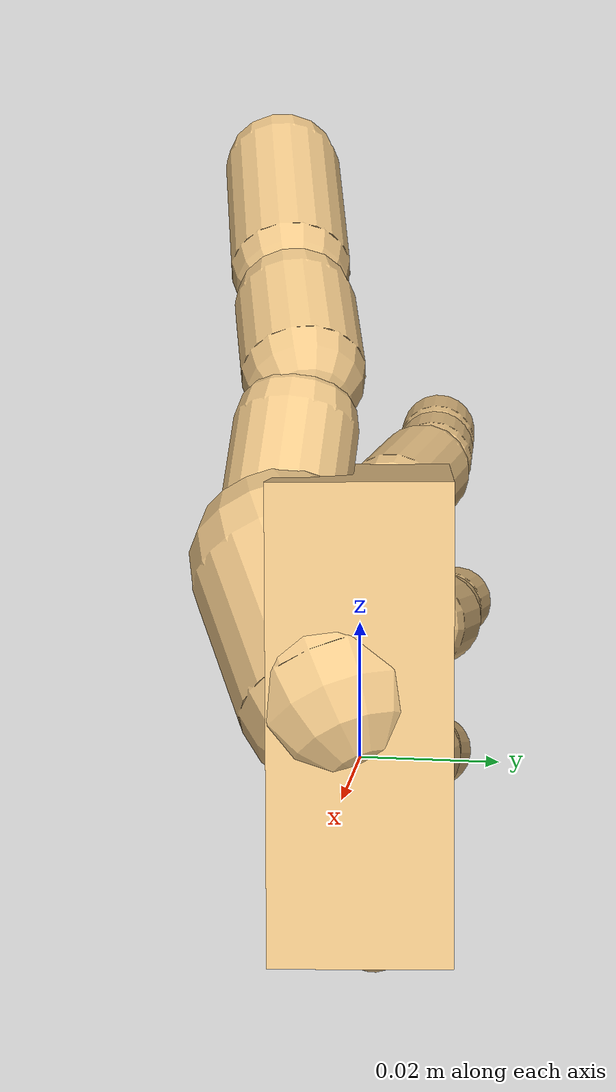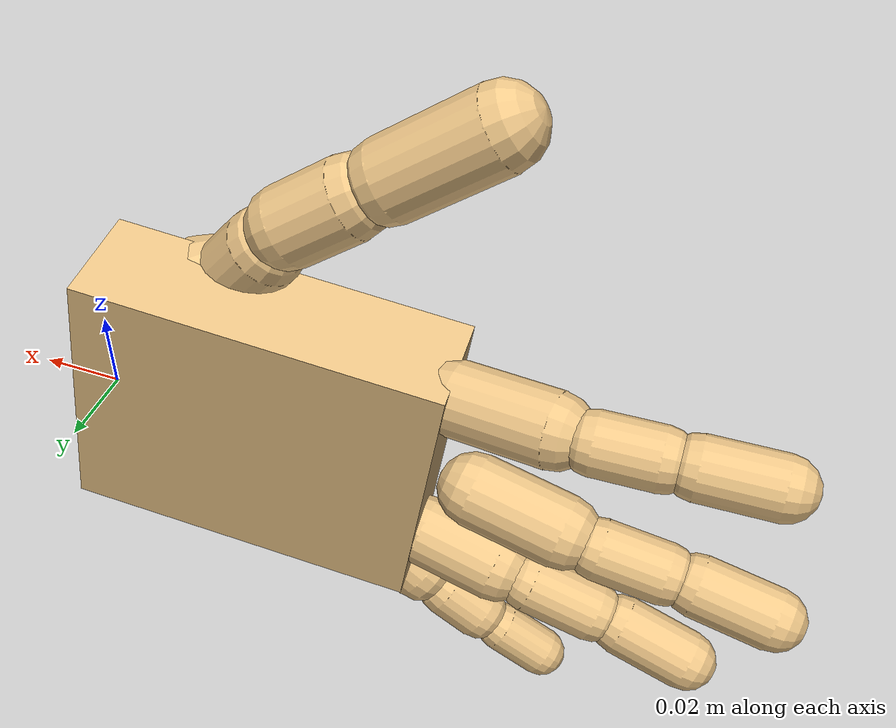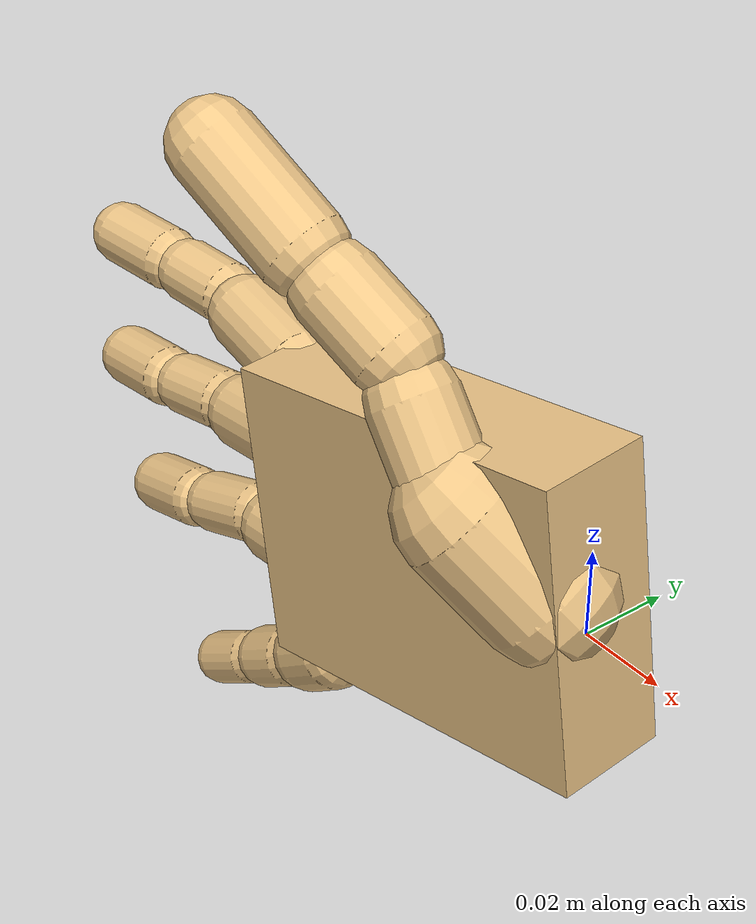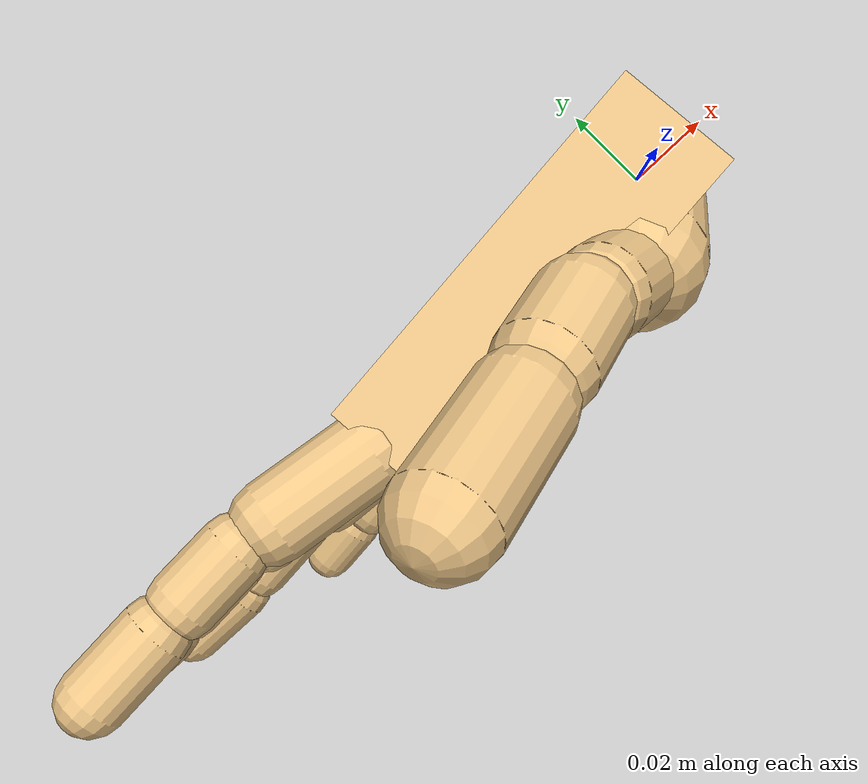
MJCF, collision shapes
<mujoco model="rhand_mano">
    <compiler angle="radian" meshdir="./meshes/" />
    <size njmax="500" nconmax="100" />
    <asset>
         <mesh name="right_wrist" file="right_wrist.obj" />
        <mesh name="right_index1" file="right_index1.obj" />
        <mesh name="right_index2" file="right_index2.obj" />
        <mesh name="right_index3" file="right_index3.obj" />
        <mesh name="right_middle1" file="right_middle1.obj" />
        <mesh name="right_middle2" file="right_middle2.obj" />
        <mesh name="right_middle3" file="right_middle3.obj" />
        <mesh name="right_pinky1" file="right_pinky1.obj" />
        <mesh name="right_pinky2" file="right_pinky2.obj" />
        <mesh name="right_pinky3" file="right_pinky3.obj" />
        <mesh name="right_ring1" file="right_ring1.obj" />
        <mesh name="right_ring2" file="right_ring2.obj" />
        <mesh name="right_ring3" file="right_ring3.obj" />
        <mesh name="right_thumb1" file="right_thumb1.obj" />
        <mesh name="right_thumb2" file="right_thumb2.obj" />
        <mesh name="right_thumb3" file="right_thumb3.obj" />
    </asset>
    <worldbody>
        <body name="right_wrist" pos="0 0 0">

                                <geom pos="-0.0956699 -0.00638343 -0.0061863" type="mesh" contype="0" conaffinity="0" group="1" rgba="0.917969 0.765 0.5234 1" mesh="right_wrist" />
                                <geom size="0.0439 0.0135 0.035" pos="-0.0392211 -0.00378517 -0.000630835" quat="0.996311 0.00681974 -0.0706646 0.0482078" type="box" rgba="0.917969 0.765 0.5234 1" />
                                <geom size="0.015 0.0117845" pos="-0.0144538 -0.0093134 0.0154877" quat="0.913582 0.220263 -0.341835 0" type="capsule" rgba="0.917969 0.765 0.5234 1" />
                                <body name="right_index1" pos="-0.0880973 -0.00520036 0.020686">
                                    <inertial pos="-0.0184105 0.00337297 0.00148585" quat="0.00227126 0.676555 -0.0419441 0.735193" mass="0.00885801" diaginertia="8.33438e-07 8.00909e-07 4.40063e-07" />
                                    <joint name="right_index1_x" pos="0 0 0" axis="1 0 0" limited="true" range="-0.14 0.46" stiffness="10" damping="10" frictionloss="0.0001" />
                                    <body name="right_index1_y" pos="0 0 0">
                                        <inertial pos="0 0 0" mass="0.01" diaginertia="0.01 0.01 0.01" />
                                        <joint name="right_index1_y" pos="0 0 0" axis="0 1 0" limited="true" range="-0.61 0.32" stiffness="10" damping="10" frictionloss="0.0001" />
                                        <body name="right_index1_z" pos="0 0 0">
                                            <inertial pos="0 0 0" mass="0.01" diaginertia="0.01 0.01 0.01" />
                                            <joint name="right_index1_z" pos="0 0 0" axis="0 0 1" limited="true" range="-0.38 1.25" stiffness="10" damping="10" frictionloss="0.0001" />
                                            <geom pos="-0.00757268 -0.00118307 -0.0268723" type="mesh" contype="0" conaffinity="0" group="1" rgba="0.917969 0.765 0.5234 1" mesh="right_index1" />
                                            <geom size="0.009 0.0119992" pos="-0.011883 0.00145792 0.000806192" quat="0.730475 -0.0831659 -0.677857 0" type="capsule" rgba="0.917969 0.765 0.5234 1" />
                                            <body name="right_index2" pos="-0.0326789 0.00400936 0.00221707">
                                                <inertial pos="-0.0112131 -0.000167142 2.32336e-05" quat="0.436117 0.481284 0.415986 0.636493" mass="0.00429965" diaginertia="2.26068e-07 2.05281e-07 1.5109e-07" />
                                                <joint name="right_index2_x" pos="0 0 0" axis="1 0 0" limited="true" range="-0.43 0.58" stiffness="10" damping="10" frictionloss="0.0001" />
                                                <body name="right_index2_y" pos="0 0 0">
                                                    <inertial pos="0 0 0" mass="0.01" diaginertia="0.01 0.01 0.01" />
                                                    <joint name="right_index2_y" pos="0 0 0" axis="0 1 0" limited="true" range="-0.26 0.21" stiffness="10" damping="10" frictionloss="0.0001" />
                                                    <body name="right_index2_z" pos="0 0 0">
                                                        <inertial pos="0 0 0" mass="0.01" diaginertia="0.01 0.01 0.01" />
                                                        <joint name="right_index2_z" pos="0 0 0" axis="0 0 1" limited="true" range="-0.14 1.3" stiffness="10" damping="10" frictionloss="0.0001" />
                                                        <geom pos="0.0251062 -0.00519243 -0.0290894" type="mesh" contype="0" conaffinity="0" group="1" rgba="0.917969 0.765 0.5234 1" mesh="right_index2" />
                                                        <geom size="0.0075 0.00734711" pos="-0.00733443 -0.000429826 -3.77775e-05" quat="0.705287 0.0414745 -0.707708 0" type="capsule" rgba="0.917969 0.765 0.5234 1" />
                                                        <body name="right_index3" pos="-0.0221559 -0.00129842 -0.000114119">
                                                            <inertial pos="-0.0111328 -0.000501862 -0.000143096" quat="0.598112 0.404056 0.535204 0.438814" mass="0.00309571" diaginertia="1.58586e-07 1.42543e-07 7.39047e-08" />
                                                            <joint name="right_index3_x" pos="0 0 0" axis="1 0 0" limited="true" range="-0.39 0.43" stiffness="10" damping="10" frictionloss="0.0001" />
                                                            <body name="right_index3_y" pos="0 0 0">
                                                                <inertial pos="0 0 0" mass="0.01" diaginertia="0.01 0.01 0.01" />
                                                                <joint name="right_index3_y" pos="0 0 0" axis="0 1 0" limited="true" range="-0.17 0.35" stiffness="10" damping="10" frictionloss="0.0001" />
                                                                <body name="right_index3_z" pos="0 0 0">
                                                                    <inertial pos="-0.0127411 0.000592058 -0.000250692" quat="0.0165763 0.699936 -0.0162537 0.713828" mass="0.02" diaginertia="0.0200033 0.0200033 0.02" />
                                                                    <joint name="right_index3_z" pos="0 0 0" axis="0 0 1" limited="true" range="-0.25 1.15" stiffness="10" damping="10" frictionloss="0.0001" />
                                                                    <geom pos="0.0472621 -0.003894 -0.0289752" type="mesh" contype="0" conaffinity="0" group="1" rgba="0.917969 0.765 0.5234 1" mesh="right_index3" />
                                                                    <geom size="0.0075 0.00902586" pos="-0.00900129 -0.000641441 -0.000177108" quat="0.700135 0.0507524 -0.712205 0" type="capsule" rgba="0.917969 0.765 0.5234 1" />
                                                                </body>
                                                            </body>
                                                        </body>
                                                    </body>
                                                </body>
                                            </body>
                                        </body>
                                    </body>
                                </body>
                                <body name="right_middle1" pos="-0.0946605 -0.00147896 -0.00335754">
                                    <inertial pos="-0.0140409 0.00236965 -0.00297553" quat="0.61092 0.387719 0.482166 0.49393" mass="0.0104123" diaginertia="1.20313e-06 1.15795e-06 5.34769e-07" />
                                    <joint name="right_middle1_x" pos="0 0 0" axis="1 0 0" limited="true" range="-0.5 0.42" stiffness="10" damping="10" frictionloss="0.0001" />
                                    <body name="right_middle1_y" pos="0 0 0">
                                        <inertial pos="0 0 0" mass="0.01" diaginertia="0.01 0.01 0.01" />
                                        <joint name="right_middle1_y" pos="0 0 0" axis="0 1 0" limited="true" range="-0.61 0.21" stiffness="10" damping="10" frictionloss="0.0001" />
                                        <body name="right_middle1_z" pos="0 0 0">
                                            <inertial pos="0 0 0" mass="0.01" diaginertia="0.01 0.01 0.01" />
                                            <joint name="right_middle1_z" pos="0 0 0" axis="0 0 1" limited="true" range="-0.49 1.44" stiffness="10" damping="10" frictionloss="0.0001" />
                                            <geom pos="-0.00100949 -0.00490447 -0.00282876" type="mesh" contype="0" conaffinity="0" group="1" rgba="0.917969 0.765 0.5234 1" mesh="right_middle1" />
                                            <geom size="0.009 0.0113676" pos="-0.0111697 0.000666731 -0.00200396" quat="0.64176 -0.0456961 -0.765543 0" type="capsule" rgba="0.917969 0.765 0.5234 1" />
                                            <body name="right_middle2" pos="-0.0311827 0.00186133 -0.00559451">
                                                <inertial pos="-0.0130836 -0.000209653 -0.00221531" quat="0.52861 0.334981 0.537432 0.565267" mass="0.00413492" diaginertia="2.07183e-07 1.92604e-07 1.43804e-07" />
                                                <joint name="right_middle2_x" pos="0 0 0" axis="1 0 0" limited="true" range="-0.47 0.02" stiffness="10" damping="10" frictionloss="0.0001" />
                                                <body name="right_middle2_y" pos="0 0 0">
                                                    <inertial pos="0 0 0" mass="0.01" diaginertia="0.01 0.01 0.01" />
                                                    <joint name="right_middle2_y" pos="0 0 0" axis="0 1 0" limited="true" range="-0.29 0.05" stiffness="10" damping="10" frictionloss="0.0001" />
                                                    <body name="right_middle2_z" pos="0 0 0">
                                                        <inertial pos="0 0 0" mass="0.01" diaginertia="0.01 0.01 0.01" />
                                                        <joint name="right_middle2_z" pos="0 0 0" axis="0 0 1" limited="true" range="-0.45 1.33" stiffness="10" damping="10" frictionloss="0.0001" />
                                                        <geom pos="0.0301732 -0.00676579 0.00276574" type="mesh" contype="0" conaffinity="0" group="1" rgba="0.917969 0.765 0.5234 1" mesh="right_middle2" />
                                                        <geom size="0.0075 0.00788775" pos="-0.00776207 -0.000424321 -0.00133674" quat="0.64441 0.0417397 -0.76354 0" type="capsule" rgba="0.917969 0.765 0.5234 1" />
                                                        <body name="right_middle3" pos="-0.0229046 -0.0012521 -0.00394451">
                                                            <inertial pos="-0.013412 -0.00013217 -0.00208169" quat="0.651508 0.408066 0.461417 0.442847" mass="0.00301659" diaginertia="1.38969e-07 1.27402e-07 7.54781e-08" />
                                                            <joint name="right_middle3_x" pos="0 0 0" axis="1 0 0" limited="true" range="-0.38 0" stiffness="10" damping="10" frictionloss="0.0001" />
                                                            <body name="right_middle3_y" pos="0 0 0">
                                                                <inertial pos="0 0 0" mass="0.01" diaginertia="0.01 0.01 0.01" />
                                                                <joint name="right_middle3_y" pos="0 0 0" axis="0 1 0" limited="true" range="-0.14 0.22" stiffness="10" damping="10" frictionloss="0.0001" />
                                                                <body name="right_middle3_z" pos="0 0 0">
                                                                    <inertial pos="-0.0128461 0.00192343 -0.00206812" quat="0.0475435 0.646735 -0.0558099 0.759183" mass="0.02" diaginertia="0.0200035 0.0200035 0.02" />
                                                                    <joint name="right_middle3_z" pos="0 0 0" axis="0 0 1" limited="true" range="-0.35 0.88" stiffness="10" damping="10" frictionloss="0.0001" />
                                                                    <geom pos="0.0530778 -0.00551369 0.00671026" type="mesh" contype="0" conaffinity="0" group="1" rgba="0.917969 0.765 0.5234 1" mesh="right_middle3" />
                                                                    <geom size="0.0075 0.00926838" pos="-0.00914571 0.000301456 -0.00147239" quat="0.648513 -0.0250767 -0.76079 0" type="capsule" rgba="0.917969 0.765 0.5234 1" />
                                                                </body>
                                                            </body>
                                                        </body>
                                                    </body>
                                                </body>
                                            </body>
                                        </body>
                                    </body>
                                </body>
                                <body name="right_pinky1" pos="-0.068787 -0.00994033 -0.0432093">
                                    <inertial pos="-0.00729834 0.00120967 -0.00707704" quat="0.646146 0.313768 0.357742 0.596712" mass="0.00429689" diaginertia="2.24589e-07 2.13335e-07 1.48827e-07" />
                                    <joint name="right_pinky1_x" pos="0 0 0" axis="1 0 0" limited="true" range="-1.31 0.42" stiffness="10" damping="10" frictionloss="0.0001" />
                                    <body name="right_pinky1_y" pos="0 0 0">
                                        <inertial pos="0 0 0" mass="0.01" diaginertia="0.01 0.01 0.01" />
                                        <joint name="right_pinky1_y" pos="0 0 0" axis="0 1 0" limited="true" range="-0.63 0.62" stiffness="10" damping="10" frictionloss="0.0001" />
                                        <body name="right_pinky1_z" pos="0 0 0">
                                            <inertial pos="0 0 0" mass="0.01" diaginertia="0.01 0.01 0.01" />
                                            <joint name="right_pinky1_z" pos="0 0 0" axis="0 0 1" limited="true" range="-0.06 1.65" stiffness="10" damping="10" frictionloss="0.0001" />
                                            <geom pos="-0.026883 0.0035569 0.037023" type="mesh" contype="0" conaffinity="0" group="1" rgba="0.917969 0.765 0.5234 1" mesh="right_pinky1" />
                                            <geom size="0.009 0.00605596" pos="-0.00488059 1.77346e-05 -0.00358528" quat="0.45165 -0.00324194 -0.892189 0" type="capsule" rgba="0.917969 0.765 0.5234 1" />
                                            <body name="right_pinky2" pos="-0.0170144 6.18252e-05 -0.0124988">
                                                <inertial pos="-0.00786047 0.00108253 -0.00618461" quat="0.739218 0.206766 0.43978 0.46626" mass="0.00278161" diaginertia="1.10336e-07 1.03788e-07 7.1461e-08" />
                                                <joint name="right_pinky2_x" pos="0 0 0" axis="1 0 0" limited="true" range="-1.11 0.98" stiffness="10" damping="10" frictionloss="0.0001" />
                                                <body name="right_pinky2_y" pos="0 0 0">
                                                    <inertial pos="0 0 0" mass="0.01" diaginertia="0.01 0.01 0.01" />
                                                    <joint name="right_pinky2_y" pos="0 0 0" axis="0 1 0" limited="true" range="-0.42 0.61" stiffness="10" damping="10" frictionloss="0.0001" />
                                                    <body name="right_pinky2_z" pos="0 0 0">
                                                        <inertial pos="0 0 0" mass="0.01" diaginertia="0.01 0.01 0.01" />
                                                        <joint name="right_pinky2_z" pos="0 0 0" axis="0 0 1" limited="true" range="-0.37 1.29" stiffness="10" damping="10" frictionloss="0.0001" />
                                                        <geom pos="-0.00986855 0.00349507 0.0495218" type="mesh" contype="0" conaffinity="0" group="1" rgba="0.917969 0.765 0.5234 1" mesh="right_pinky2" />
                                                        <geom size="0.0075 0.00572344" pos="-0.00479305 -0.000208783 -0.00312104" quat="0.476808 0.038253 -0.878175 0" type="capsule" rgba="0.917969 0.765 0.5234 1" />
                                                        <body name="right_pinky3" pos="-0.0158669 -0.000691156 -0.0103319">
                                                            <inertial pos="-0.00881048 -0.000957834 -0.00502779" quat="0.645954 0.332379 0.389167 0.566408" mass="0.00156606" diaginertia="4.44371e-08 4.12099e-08 2.61844e-08" />
                                                            <joint name="right_pinky3_x" pos="0 0 0" axis="1 0 0" limited="true" range="-1.16 0.46" stiffness="10" damping="10" frictionloss="0.0001" />
                                                            <body name="right_pinky3_y" pos="0 0 0">
                                                                <inertial pos="0 0 0" mass="0.01" diaginertia="0.01 0.01 0.01" />
                                                                <joint name="right_pinky3_y" pos="0 0 0" axis="0 1 0" limited="true" range="-0.25 0.51" stiffness="10" damping="10" frictionloss="0.0001" />
                                                                <body name="right_pinky3_z" pos="0 0 0">
                                                                    <inertial pos="-0.00854671 0.000774338 -0.00515769" quat="0.0190236 0.491222 -0.0336993 0.870175" mass="0.02" diaginertia="0.020002 0.020002 0.02" />
                                                                    <joint name="right_pinky3_z" pos="0 0 0" axis="0 0 1" limited="true" range="-1.06 0.46" stiffness="10" damping="10" frictionloss="0.0001" />
                                                                    <geom pos="0.00599835 0.00418623 0.0598537" type="mesh" contype="0" conaffinity="0" group="1" rgba="0.917969 0.765 0.5234 1" mesh="right_pinky3" />
                                                                    <geom size="0.0065 0.00675873" pos="-0.00577145 -0.000490027 -0.0034829" quat="0.492281 0.0736398 -0.867316 0" type="capsule" rgba="0.917969 0.765 0.5234 1" />
                                                                </body>
                                                            </body>
                                                        </body>
                                                    </body>
                                                </body>
                                            </body>
                                        </body>
                                    </body>
                                </body>
                                <body name="right_ring1" pos="-0.0817356 -0.00395742 -0.0266732">
                                    <inertial pos="-0.0122936 0.00247827 -0.000698965" quat="-0.202439 0.608815 -0.140617 0.754049" mass="0.00756622" diaginertia="5.9483e-07 5.75582e-07 3.61418e-07" />
                                    <joint name="right_ring1_x" pos="0 0 0" axis="1 0 0" limited="true" range="-0.45 0.32" stiffness="10" damping="10" frictionloss="0.0001" />
                                    <body name="right_ring1_y" pos="0 0 0">
                                        <inertial pos="0 0 0" mass="0.01" diaginertia="0.01 0.01 0.01" />
                                        <joint name="right_ring1_y" pos="0 0 0" axis="0 1 0" limited="true" range="-0.44 0.35" stiffness="10" damping="10" frictionloss="0.0001" />
                                        <body name="right_ring1_z" pos="0 0 0">
                                            <inertial pos="0 0 0" mass="0.01" diaginertia="0.01 0.01 0.01" />
                                            <joint name="right_ring1_z" pos="0 0 0" axis="0 0 1" limited="true" range="-0.28 1.48" stiffness="10" damping="10" frictionloss="0.0001" />
                                            <geom pos="-0.0139344 -0.00242601 0.0204869" type="mesh" contype="0" conaffinity="0" group="1" rgba="0.917969 0.765 0.5234 1" mesh="right_ring1" />
                                            <geom size="0.009 0.00992191" pos="-0.00973975 0.000711024 -0.00175383" quat="0.641575 -0.0558486 -0.765025 0" type="capsule" rgba="0.917969 0.765 0.5234 1" />
                                            <body name="right_ring2" pos="-0.0283143 0.00206701 -0.00509854">
                                                <inertial pos="-0.0112011 -0.00038999 -0.00420265" quat="0.609508 0.343103 0.489345 0.520886" mass="0.00502999" diaginertia="3.48968e-07 3.41699e-07 1.62903e-07" />
                                                <joint name="right_ring2_x" pos="0 0 0" axis="1 0 0" limited="true" range="-0.58 -0.11" stiffness="10" damping="10" frictionloss="0.0001" />
                                                <body name="right_ring2_y" pos="0 0 0">
                                                    <inertial pos="0 0 0" mass="0.01" diaginertia="0.01 0.01 0.01" />
                                                    <joint name="right_ring2_y" pos="0 0 0" axis="0 1 0" limited="true" range="-0.47 0.3" stiffness="10" damping="10" frictionloss="0.0001" />
                                                    <body name="right_ring2_z" pos="0 0 0">
                                                        <inertial pos="0 0 0" mass="0.01" diaginertia="0.01 0.01 0.01" />
                                                        <joint name="right_ring2_z" pos="0 0 0" axis="0 0 1" limited="true" range="-0.35 1.46" stiffness="10" damping="10" frictionloss="0.0001" />
                                                        <geom pos="0.0143799 -0.00449301 0.0255854" type="mesh" contype="0" conaffinity="0" group="1" rgba="0.917969 0.765 0.5234 1" mesh="right_ring2" />
                                                        <geom size="0.0075 0.00864294" pos="-0.0082017 -0.000588652 -0.00266194" quat="0.588222 0.057893 -0.806625 0" type="capsule" rgba="0.917969 0.765 0.5234 1" />
                                                        <body name="right_ring3" pos="-0.0235205 -0.00168811 -0.00763382">
                                                            <inertial pos="-0.0119942 -8.53267e-05 -0.00351911" quat="0.646087 0.373119 0.460429 0.480998" mass="0.00288135" diaginertia="1.39954e-07 1.31092e-07 6.33951e-08" />
                                                            <joint name="right_ring3_x" pos="0 0 0" axis="1 0 0" limited="true" range="-0.45 -0.01" stiffness="10" damping="10" frictionloss="0.0001" />
                                                            <body name="right_ring3_y" pos="0 0 0">
                                                                <inertial pos="0 0 0" mass="0.01" diaginertia="0.01 0.01 0.01" />
                                                                <joint name="right_ring3_y" pos="0 0 0" axis="0 1 0" limited="true" range="-0.08 0.33" stiffness="10" damping="10" frictionloss="0.0001" />
                                                                <body name="right_ring3_z" pos="0 0 0">
                                                                    <inertial pos="-0.0122178 0.00192946 -0.00367024" quat="0.597429 0.463346 0.378257 0.534145" mass="0.02" diaginertia="0.0200033 0.0200033 0.02" />
                                                                    <joint name="right_ring3_z" pos="0 0 0" axis="0 0 1" limited="true" range="-0.28 0.77" stiffness="10" damping="10" frictionloss="0.0001" />
                                                                    <geom pos="0.0379004 -0.0028049 0.0332192" type="mesh" contype="0" conaffinity="0" group="1" rgba="0.917969 0.765 0.5234 1" mesh="right_ring3" />
                                                                    <geom size="0.0075 0.00901444" pos="-0.00862842 0.000303293 -0.00259198" quat="0.596852 -0.0281856 -0.801856 0" type="capsule" rgba="0.917969 0.765 0.5234 1" />
                                                                </body>
                                                            </body>
                                                        </body>
                                                    </body>
                                                </body>
                                            </body>
                                        </body>
                                    </body>
                                </body>
                                <body name="right_thumb1" pos="-0.0240897 -0.0155223 0.0258128">
                                    <inertial pos="-0.00536514 -0.00257659 0.0129758" quat="-0.285015 0.727535 -0.229445 0.580357" mass="0.013891" diaginertia="2.22911e-06 1.48365e-06 1.23544e-06" />
                                    <joint name="right_thumb1_x" pos="0 0 0" axis="1 0 0" limited="true" range="-1.9 2.43" stiffness="10" damping="10" frictionloss="0.0001" />
                                    <body name="right_thumb1_y" pos="0 0 0">
                                        <inertial pos="0 0 0" mass="0.01" diaginertia="0.01 0.01 0.01" />
                                        <joint name="right_thumb1_y" pos="0 0 0" axis="0 1 0" limited="true" range="-1.96 2.03" stiffness="10" damping="10" frictionloss="0.0001" />
                                        <body name="right_thumb1_z" pos="0 0 0">
                                            <inertial pos="0 0 0" mass="0.01" diaginertia="0.01 0.01 0.01" />
                                            <joint name="right_thumb1_z" pos="0 0 0" axis="0 0 1" limited="true" range="-1.94 2.6" stiffness="10" damping="10" frictionloss="0.0001" />
                                            <geom pos="-0.0715802 0.00913891 -0.0319991" type="mesh" contype="0" conaffinity="0" group="1" rgba="0.917969 0.765 0.5234 1" mesh="right_thumb1" />
                                            <geom size="0.01 0.0103942" pos="-0.00662821 0.0003009 0.008001" quat="0.940679 -0.0153872 -0.338948 0" type="capsule" rgba="0.917969 0.765 0.5234 1" />
                                            <body name="right_thumb2" pos="-0.0196332 0.000891287 0.0236996">
                                                <inertial pos="-0.0107558 -0.00234512 0.00848123" quat="0.0751459 0.74947 0.234612 0.614496" mass="0.00817518" diaginertia="6.78363e-07 6.3602e-07 4.31521e-07" />
                                                <joint name="right_thumb2_x" pos="0 0 0" axis="1 0 0" limited="true" range="-1.56 1.8" stiffness="10" damping="10" frictionloss="0.0001" />
                                                <body name="right_thumb2_y" pos="0 0 0">
                                                    <inertial pos="0 0 0" mass="0.01" diaginertia="0.01 0.01 0.01" />
                                                    <joint name="right_thumb2_y" pos="0 0 0" axis="0 1 0" limited="true" range="-1.52 1.8" stiffness="10" damping="10" frictionloss="0.0001" />
                                                    <body name="right_thumb2_z" pos="0 0 0">
                                                        <inertial pos="0 0 0" mass="0.01" diaginertia="0.01 0.01 0.01" />
                                                        <joint name="right_thumb2_z" pos="0 0 0" axis="0 0 1" limited="true" range="-1.52 2.5" stiffness="10" damping="10" frictionloss="0.0001" />
                                                        <geom pos="-0.051947 0.00824762 -0.0556987" type="mesh" contype="0" conaffinity="0" group="1" rgba="0.917969 0.765 0.5234 1" mesh="right_thumb2" />
                                                        <geom size="0.01 0.00854709" pos="-0.00700878 -0.00171388 0.00458176" quat="0.876373 0.114404 -0.467848 0" type="capsule" rgba="0.917969 0.765 0.5234 1" />
                                                        <body name="right_thumb3" pos="-0.0222177 -0.00543297 0.0145241">
                                                            <inertial pos="-0.0117975 -0.00227036 0.00918961" quat="0.0629763 0.836011 0.308321 0.449509" mass="0.00747772" diaginertia="6.95918e-07 6.64502e-07 3.13578e-07" />
                                                            <joint name="right_thumb3_x" pos="0 0 0" axis="1 0 0" limited="true" range="-1.32 1.85" stiffness="10" damping="10" frictionloss="0.0001" />
                                                            <body name="right_thumb3_y" pos="0 0 0">
                                                                <inertial pos="0 0 0" mass="0.01" diaginertia="0.01 0.01 0.01" />
                                                                <joint name="right_thumb3_y" pos="0 0 0" axis="0 1 0" limited="true" range="-1.03 1.2" stiffness="10" damping="10" frictionloss="0.0001" />
                                                                <body name="right_thumb3_z" pos="0 0 0">
                                                                    <inertial pos="-0.0130068 -0.00133922 0.0119411" quat="0.259779 0.636128 0.657659 0.308774" mass="0.02" diaginertia="0.0200063 0.0200063 0.02" />
                                                                    <joint name="right_thumb3_z" pos="0 0 0" axis="0 0 1" limited="true" range="-0.86 1.36" stiffness="10" damping="10" frictionloss="0.0001" />
                                                                    <geom pos="-0.0297292 0.0136806 -0.0702228" type="mesh" contype="0" conaffinity="0" group="1" rgba="0.917969 0.765 0.5234 1" mesh="right_thumb3" />
                                                                    <geom size="0.01 0.0139902" pos="-0.0114239 -0.00246002 0.007692" quat="0.880288 0.0998761 -0.463808 0" type="capsule" rgba="0.917969 0.765 0.5234 1" />
                                                                </body>
                                                            </body>
                                                        </body>
                                                    </body>
                                                    </body>
                                                </body>
                                            </body>
                                        </body>
                                    </body>

        </body>
    </worldbody>
          <actuator>
    <motor name="right_wrist_0x" joint="right_wrist_0x" gear="500"/>
    <motor name="right_wrist_0y" joint="right_wrist_0y" gear="500"/>
    <motor name="right_wrist_0z" joint="right_wrist_0z" gear="500"/>
    <motor name="right_wrist_0rx" joint="right_wrist_0rx" gear="500"/>
    <motor name="right_wrist_0ry" joint="right_wrist_0ry" gear="500"/>
    <motor name="right_wrist_0rz" joint="right_wrist_0rz" gear="500"/>
    <motor name="right_index1_x" joint="right_index1_x" gear="500"/>
    <motor name="right_index1_y" joint="right_index1_y" gear="500"/>
    <motor name="right_index1_z" joint="right_index1_z" gear="500"/>
    <motor name="right_index2_x" joint="right_index2_x" gear="500"/>
    <motor name="right_index2_y" joint="right_index2_y" gear="500"/>
    <motor name="right_index2_z" joint="right_index2_z" gear="500"/>
    <motor name="right_index3_x" joint="right_index3_x" gear="500"/>
    <motor name="right_index3_y" joint="right_index3_y" gear="500"/>
    <motor name="right_index3_z" joint="right_index3_z" gear="500"/>
    <motor name="right_middle1_x" joint="right_middle1_x" gear="500"/>
    <motor name="right_middle1_y" joint="right_middle1_y" gear="500"/>
    <motor name="right_middle1_z" joint="right_middle1_z" gear="500"/>
    <motor name="right_middle2_x" joint="right_middle2_x" gear="500"/>
    <motor name="right_middle2_y" joint="right_middle2_y" gear="500"/>
    <motor name="right_middle2_z" joint="right_middle2_z" gear="500"/>
    <motor name="right_middle3_x" joint="right_middle3_x" gear="500"/>
    <motor name="right_middle3_y" joint="right_middle3_y" gear="500"/>
    <motor name="right_middle3_z" joint="right_middle3_z" gear="500"/>
    <motor name="right_pinky1_x" joint="right_pinky1_x" gear="500"/>
    <motor name="right_pinky1_y" joint="right_pinky1_y" gear="500"/>
    <motor name="right_pinky1_z" joint="right_pinky1_z" gear="500"/>
    <motor name="right_pinky2_x" joint="right_pinky2_x" gear="500"/>
    <motor name="right_pinky2_y" joint="right_pinky2_y" gear="500"/>
    <motor name="right_pinky2_z" joint="right_pinky2_z" gear="500"/>
    <motor name="right_pinky3_x" joint="right_pinky3_x" gear="500"/>
    <motor name="right_pinky3_y" joint="right_pinky3_y" gear="500"/>
    <motor name="right_pinky3_z" joint="right_pinky3_z" gear="500"/>
    <motor name="right_ring1_x" joint="right_ring1_x" gear="500"/>
    <motor name="right_ring1_y" joint="right_ring1_y" gear="500"/>
    <motor name="right_ring1_z" joint="right_ring1_z" gear="500"/>
    <motor name="right_ring2_x" joint="right_ring2_x" gear="500"/>
    <motor name="right_ring2_y" joint="right_ring2_y" gear="500"/>
    <motor name="right_ring2_z" joint="right_ring2_z" gear="500"/>
    <motor name="right_ring3_x" joint="right_ring3_x" gear="500"/>
    <motor name="right_ring3_y" joint="right_ring3_y" gear="500"/>
    <motor name="right_ring3_z" joint="right_ring3_z" gear="500"/>
    <motor name="right_thumb1_x" joint="right_thumb1_x" gear="500"/>
    <motor name="right_thumb1_y" joint="right_thumb1_y" gear="500"/>
    <motor name="right_thumb1_z" joint="right_thumb1_z" gear="500"/>
    <motor name="right_thumb2_x" joint="right_thumb2_x" gear="500"/>
    <motor name="right_thumb2_y" joint="right_thumb2_y" gear="500"/>
    <motor name="right_thumb2_z" joint="right_thumb2_z" gear="500"/>
    <motor name="right_thumb3_x" joint="right_thumb3_x" gear="500"/>
    <motor name="right_thumb3_y" joint="right_thumb3_y" gear="500"/>
    <motor name="right_thumb3_z" joint="right_thumb3_z" gear="500"/>
  </actuator>
</mujoco>
